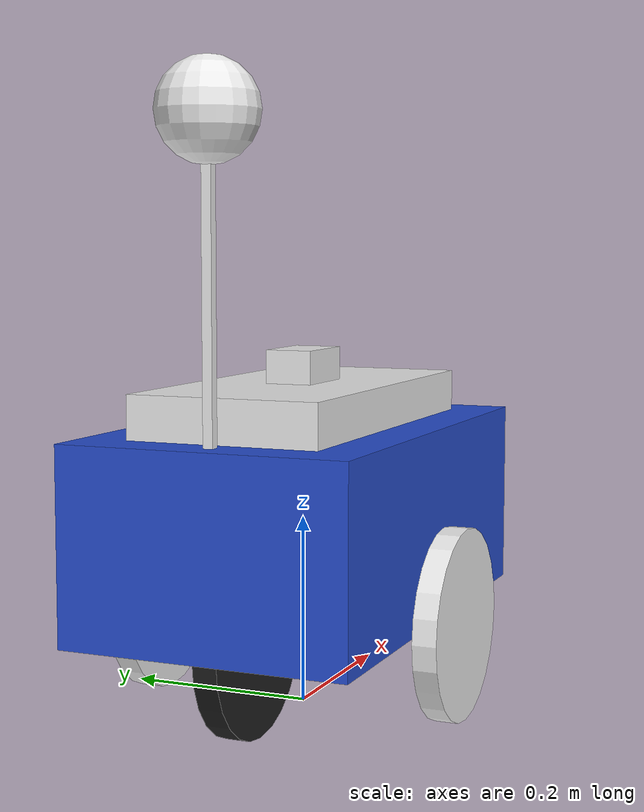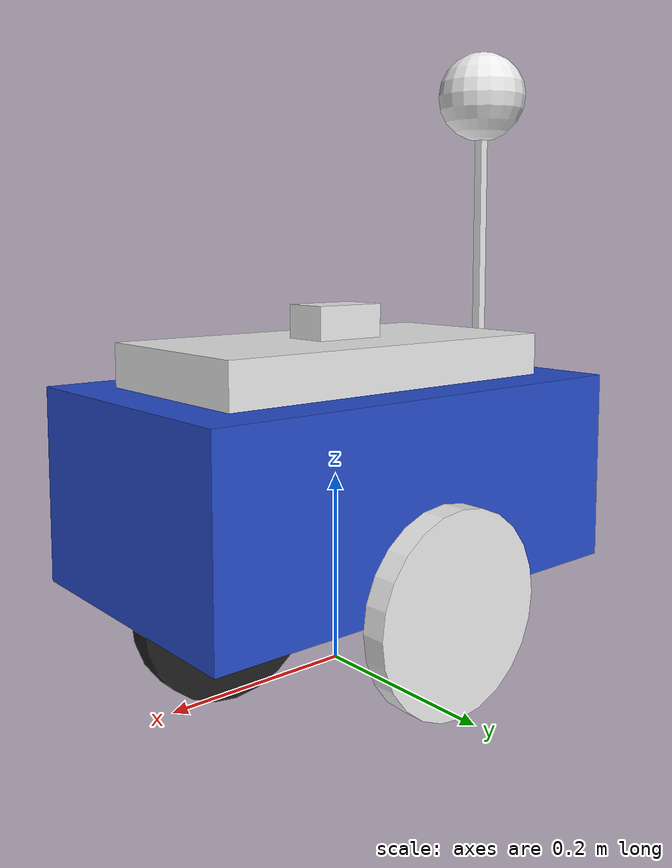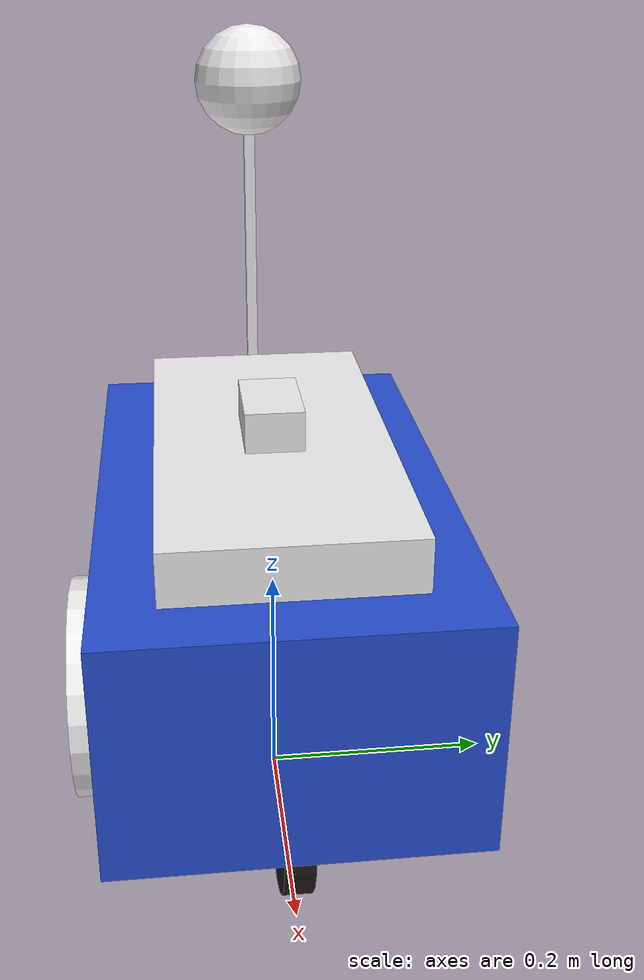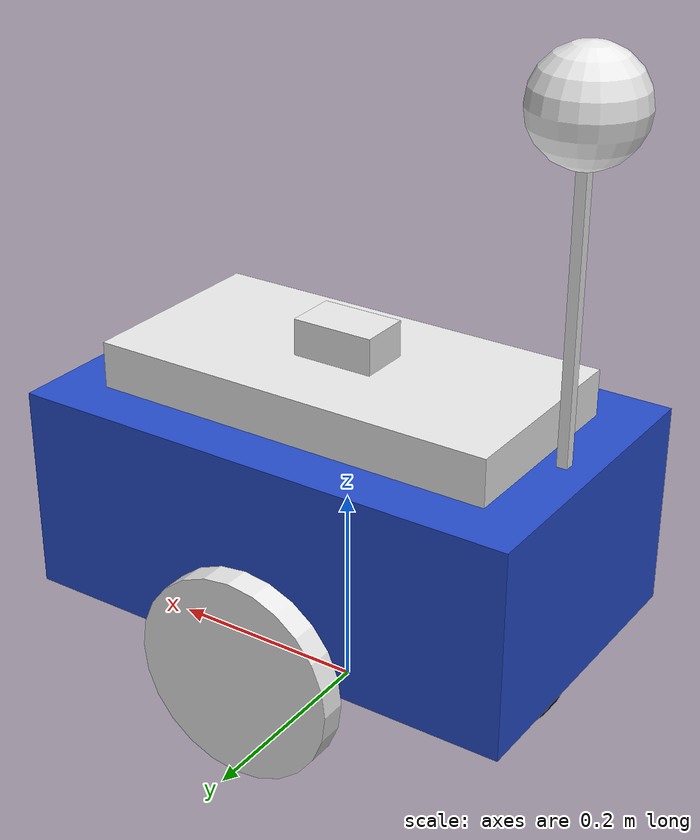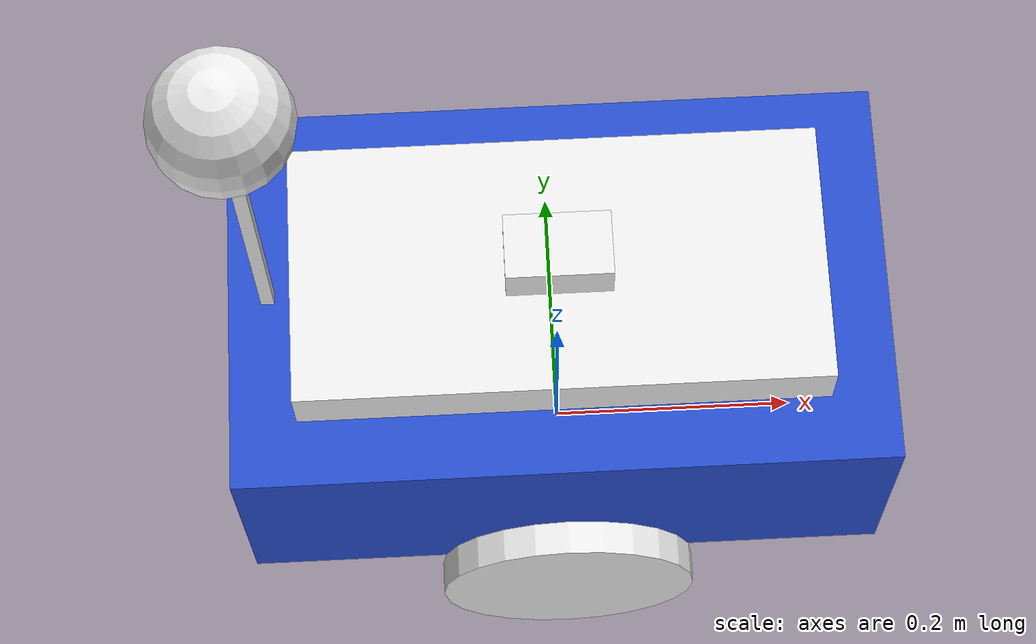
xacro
<?xml version='1.0'?>

<robot name="myrobot" xmlns:xacro="http://www.ros.org/wiki/xacro">

  <xacro:property name="cameraSize" value="0.05"/>
  <xacro:property name="cameraMass" value="0.1"/>
  <xacro:property name="wheeldiam" value="0.2" />
  <xacro:property name="wheel_separation" value="0.34"/>
  <xacro:property name="M_PI" value="3.1415926535897931" />
  <xacro:property name="body_len" value="0.5" />

  <xacro:include filename="$(find indoor_ros)/urdf/color.xacro" />
  <xacro:include filename="$(find indoor_ros)/urdf/indoor_mobot.gazebo" />

  <link name="base_link" />

  <!-- for robot base frame -->
  <link name='body_frame'>
    <visual>
      <origin xyz="0 0 0" rpy="0 0 0"/>
      <geometry>
        <box size="${body_len} .3 .2"/>
      </geometry>
      <material name="blue"/>
    </visual>

    <collision>
      <geometry>
        <box size="${body_len} .3 .2"/>
      </geometry>
    </collision>

    <inertial>
      <mass value="10.0"/>
      <inertia
          ixx="0.5" ixy="0" ixz="0"
          iyy="1.0" iyz="0"
          izz="0.1"
      />
    </inertial>
  </link>

  <joint name="body_frame_joint" type="fixed">
    <parent link="base_link"/>
    <child link="body_frame"/>
    <origin xyz="0 0 0.2"/>
  </joint>

<!-- body rect -->
  <xacro:macro name="rect" params="prefix size_x size_y size_z place_x joint_z">
    <link name='${prefix}_rect'>
      <visual>
        <origin xyz="${place_x} 0 0" rpy="0 0 0"/>
        <geometry>
          <box size="${size_x} ${size_y} ${size_z}"/>
        </geometry>
        <material name="white"/>
      </visual>

      <collision>
        <geometry>
           <box size="${size_x} ${size_y} ${size_z}"/>
        </geometry>
      </collision>

      <inertial>
        <mass value="10.0"/>
        <inertia
            ixx="0.5" ixy="0" ixz="0"
            iyy="1.0" iyz="0"
            izz="0.1"
        />
      </inertial>
    </link>

    <joint name="${prefix}_rect_joint" type="fixed">
      <parent link="body_frame"/>
      <child link="${prefix}_rect"/>
      <origin xyz="0 0 ${joint_z}"/>
    </joint>

  </xacro:macro>

  <xacro:rect prefix="first" size_x="${body_len-0.1}" size_y=".2" size_z=".05" place_x="0" joint_z="0.12"/>
  <xacro:rect prefix="second" size_x="${body_len-0.42}" size_y=".05" size_z=".04" place_x="0" joint_z="0.16"/>
  <xacro:rect prefix="third" size_x="${body_len-0.49}" size_y="0.01" size_z="0.27" place_x="-0.22" joint_z="0.23"/>

  <xacro:macro name="head">
    <link name="head_link">
      <visual>
          <geometry>
                <sphere radius="0.05"/>
          </geometry>
            <material name="white"/>
      </visual>
      <collision>
          <geometry>
                <sphere radius="0.05"/>
          </geometry>
      </collision>

      <inertial>
          <mass value="1"/>
          <inertia
              ixx="0.5" ixy="0" ixz="0"
              iyy="1.0" iyz="0"
              izz="0.1"
          />
        </inertial>

    </link>
    <joint name="head_joint" type="fixed">
        <parent link="third_rect"/>
        <child link="head_link"/>
        <origin xyz="-0.22 0 0.18"/>
    </joint>
  </xacro:macro>
  <xacro:head />

  <!-- for wheel -->
  <xacro:macro name="wheel" params="prefix reflect">
    <link name="${prefix}_wheel">
      <visual>
        <origin xyz="0 0 0" rpy="${M_PI/2} 0 0"/>
        <geometry>
          <cylinder radius="${wheeldiam/2}" length="0.025"/>
        </geometry>
        <material name="white"/>
      </visual>

      <collision>
        <origin xyz="0 0 0" rpy="${M_PI/2} 0 0"/>
        <geometry>
          <cylinder radius="${wheeldiam/2}" length="0.05"/>
        </geometry>
      </collision>

      <inertial>
        <origin xyz="0 0 0" rpy="${M_PI/2} 0 0"/>
        <mass value="2.5"/>
        <cylinder_inertia m="5" r="0.1" h="0.05"/>
        <inertia
          ixx="1.0" ixy="0.0" ixz="0.0"
          iyy="1.0" iyz="0.0"
          izz="1.0"/>
      </inertial>
    </link>

    <joint name="${prefix}_wheel_hinge" type="continuous">
      <origin xyz="0 ${reflect*wheel_separation/2} -0.1" rpy="0 0 0"/>
      <child link="${prefix}_wheel"/>
      <parent link="body_frame"/>
      <axis xyz="0 1 0" rpy="0 0 0"/>
      <limit effort="100" velocity="100"/>
      <joint_properties damping="0.0" friction="0.0"/>
    </joint>

  </xacro:macro>

  <xacro:wheel prefix="right" reflect="-1" />
  <xacro:wheel prefix="left" reflect="1" />

  <!-- for caster -->
  <xacro:macro name="caster_visual" params="prefix reflect">
    <link name='${prefix}_caster_visual'>
       <visual>
        <origin xyz="0 0 0" rpy="${M_PI/2} 0 0"/>
        <geometry>
          <cylinder radius="${wheeldiam/2}" length="0.025"/>
        </geometry>
        <material name="black"/>
      </visual>

      <collision>
       <origin xyz="0 0 0" rpy="${M_PI/2} 0 0"/>
        <geometry>
           <cylinder radius="${wheeldiam/2}" length="0.025"/>
        </geometry>
        <surface>
          <friction>
            <ode>
              <mu>0</mu>
              <mu2>0</mu2>
              <slip1>1.0</slip1>
              <slip2>1.0</slip2>
            </ode>
          </friction>
        </surface>
      </collision>

      <inertial>
        <mass value="1.0"/>
        <origin xyz="0.0 0 0.1" rpy="0 0 0"/>
        <inertia
            ixx="0.5" ixy="0" ixz="0"
            iyy="1.0" iyz="0"
            izz="0.1"
        />
      </inertial>
    </link>

    <joint name="${prefix}_chassis_joint" type="fixed">
        <parent link="body_frame"/>
        <child link="${prefix}_caster_visual"/>
        <origin xyz="${reflect*wheel_separation/2.5} 0 -${wheeldiam/2}"/>
    </joint>
  </xacro:macro>

  <xacro:caster_visual prefix="front" reflect="1"/>
  <xacro:caster_visual prefix="back" reflect="-1"/>

</robot>
